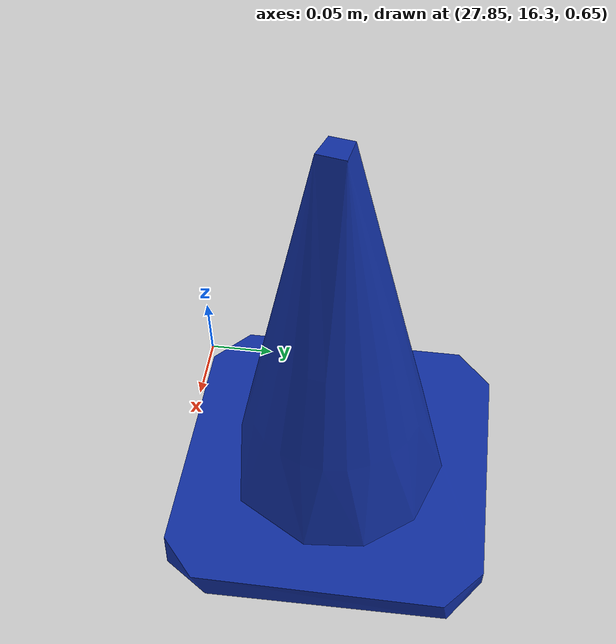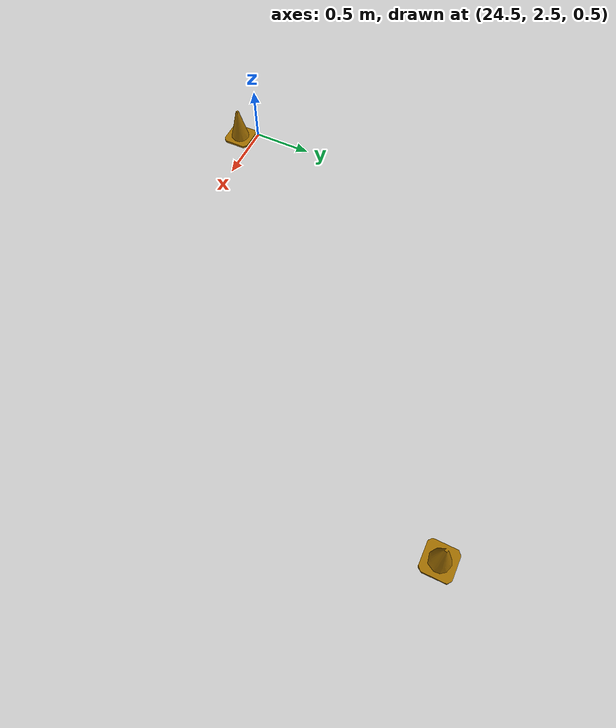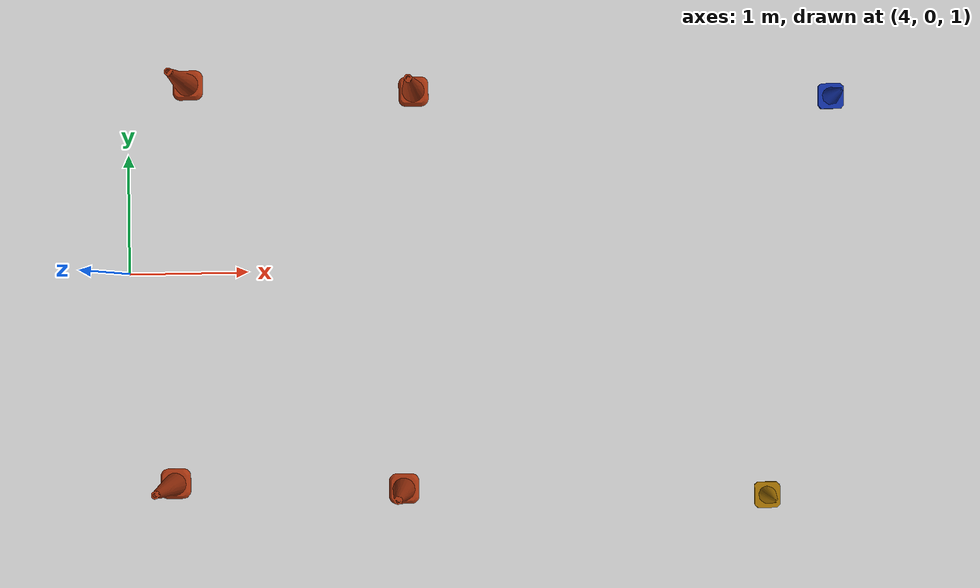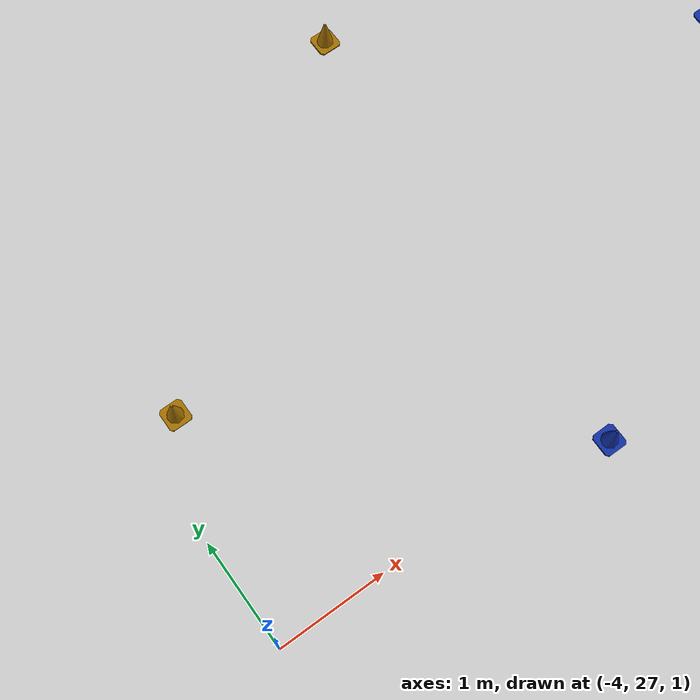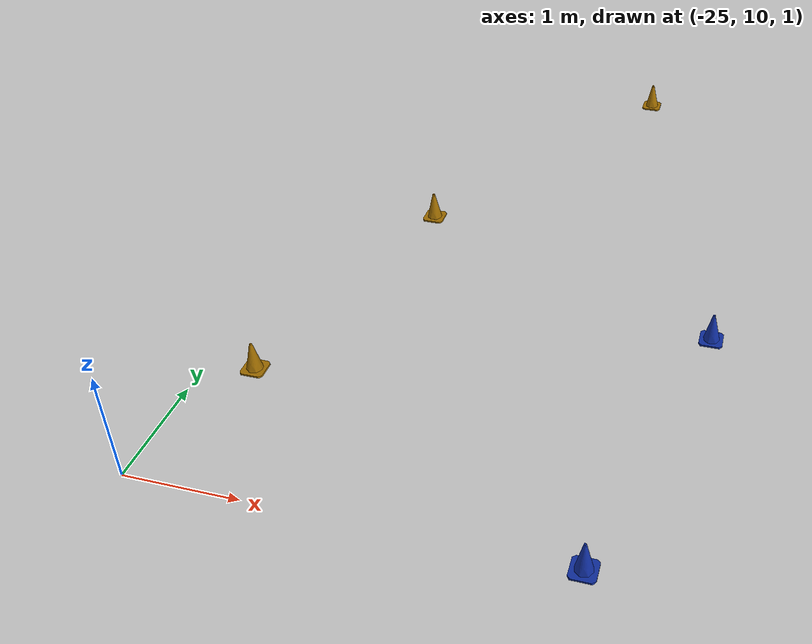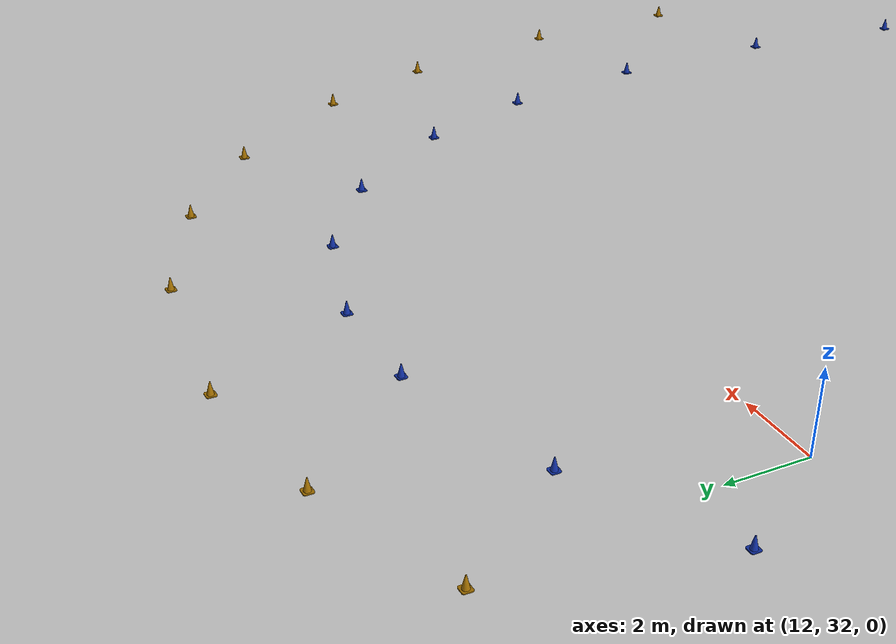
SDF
<sdf version='1.6'>
  <world name='small_track'>
    <gui fullscreen='0'>
      <camera name='user_camera'>
        <pose frame=''>-40 40 20 0 0.667643 -1</pose>
        <view_controller>orbit</view_controller>
        <projection_type>perspective</projection_type>
      </camera>
    </gui>

    <plugin
      filename="gz-sim-sensors-system"
      name="gz::sim::systems::Sensors">
      <render_engine>ogre2</render_engine>
    </plugin>

    <plugin
      filename="gz-sim-physics-system"
      name="gz::sim::systems::Physics">
    </plugin>

    <plugin
      filename="gz-sim-user-commands-system"
      name="gz::sim::systems::UserCommands">
    </plugin>

    <plugin
      filename="gz-sim-scene-broadcaster-system"
      name="gz::sim::systems::SceneBroadcaster">
    </plugin>

    <!-- WORLD SETTINGS -->
    <scene>
      <ambient>1.0 1.0 1.0 1.0</ambient>
      <shadows>false</shadows>
    </scene>

    <spherical_coordinates>
      <heading_deg>180</heading_deg>

      <!-- Appleton Tower coordinates -->
      <latitude_deg>-27.690733</latitude_deg>
      <longitude_deg>152.656715</longitude_deg>
    </spherical_coordinates>

    <light name='sun' type='directional'>
      <cast_shadows>1</cast_shadows>
      <pose frame=''>0 0 10 0 -0 0</pose>
      <diffuse>0.8 0.8 0.8 1</diffuse>
      <specular>0.1 0.1 0.1 1</specular>
      <attenuation>
        <range>1000</range>
        <constant>0.9</constant>
        <linear>0.01</linear>
        <quadratic>0.001</quadratic>
      </attenuation>
      <direction>-0.5 0.5 -1</direction>
    </light>

    <!-- MODELS -->
    <include>
      <uri>model://ground_plane</uri>
      <pose>0.0 0.0 0.0 0 0 0</pose>
    </include>

    <include>
      <uri>model://small_track</uri>
      <name>small_track</name>
      <pose>0 0 0.5 0 0 0</pose>
    </include>

  </world>
</sdf>

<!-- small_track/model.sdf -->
<sdf version='1.6'>
  <model name='small_track'>

    <include>
      <pose>10.07 1.47 0.15 0 0 0</pose>
      <uri>model://blue_cone</uri>
      <name>blue_cone_0</name>

    </include>

    <include>
      <pose>14.07 1.67 0.15 0 0 0</pose>
      <uri>model://blue_cone</uri>
      <name>blue_cone_1</name>

      //

    </include>

    <include>
      <pose>17.85 2.52 0.15 0 0 0</pose>
      <uri>model://blue_cone</uri>
      <name>blue_cone_2</name>

    </include>

    <include>
      <pose>20.75 3.87 0.15 0 0 0</pose>
      <uri>model://blue_cone</uri>
      <name>blue_cone_3</name>

    </include>

    <include>
      <pose>23.57 6.19 0.15 0 0 0</pose>
      <uri>model://blue_cone</uri>
      <name>blue_cone_4</name>

    </include>

    <include>
      <pose>25.68 9.18 0.15 0 0 0</pose>
      <uri>model://blue_cone</uri>
      <name>blue_cone_5</name>

    </include>

    <include>
      <pose>27.1 12.65 0.15 0 0 0</pose>
      <uri>model://blue_cone</uri>
      <name>blue_cone_6</name>

    </include>

    <include>
      <pose>27.96 16.42 0.15 0 0 0</pose>
      <uri>model://blue_cone</uri>
      <name>blue_cone_7</name>

    </include>

    <include>
      <pose>28.42 20.92 0.15 0 0 0</pose>
      <uri>model://blue_cone</uri>
      <name>blue_cone_8</name>

    </include>

    <include>
      <pose>28.38 25.49 0.15 0 0 0</pose>
      <uri>model://blue_cone</uri>
      <name>blue_cone_9</name>

    </include>

    <include>
      <pose>27.8 29.39 0.15 0 0 0</pose>
      <uri>model://blue_cone</uri>
      <name>blue_cone_10</name>

    </include>

    <include>
      <pose>26.75 32.48 0.15 0 0 0</pose>
      <uri>model://blue_cone</uri>
      <name>blue_cone_11</name>

    </include>

    <include>
      <pose>24.76 35.45 0.15 0 0 0</pose>
      <uri>model://blue_cone</uri>
      <name>blue_cone_12</name>

    </include>

    <include>
      <pose>22.43 37.23 0.15 0 0 0</pose>
      <uri>model://blue_cone</uri>
      <name>blue_cone_13</name>

    </include>

    <include>
      <pose>19.59 38.14 0.15 0 0 0</pose>
      <uri>model://blue_cone</uri>
      <name>blue_cone_14</name>

    </include>

    <include>
      <pose>16.93 38.16 0.15 0 0 0</pose>
      <uri>model://blue_cone</uri>
      <name>blue_cone_15</name>

    </include>

    <include>
      <pose>13.0 37.03 0.15 0 0 0</pose>
      <uri>model://blue_cone</uri>
      <name>blue_cone_16</name>

    </include>

    <include>
      <pose>9.69 35.16 0.15 0 0 0</pose>
      <uri>model://blue_cone</uri>
      <name>blue_cone_17</name>

    </include>

    <include>
      <pose>6.11 32.37 0.15 0 0 0</pose>
      <uri>model://blue_cone</uri>
      <name>blue_cone_18</name>

    </include>

    <include>
      <pose>2.73 29.44 0.15 0 0 0</pose>
      <uri>model://blue_cone</uri>
      <name>blue_cone_19</name>

    </include>

    <include>
      <pose>-0.75 26.8 0.15 0 0 0</pose>
      <uri>model://blue_cone</uri>
      <name>blue_cone_20</name>

    </include>

    <include>
      <pose>-5.17 24.36 0.15 0 0 0</pose>
      <uri>model://blue_cone</uri>
      <name>blue_cone_21</name>

    </include>

    <include>
      <pose>-9.41 22.44 0.15 0 0 0</pose>
      <uri>model://blue_cone</uri>
      <name>blue_cone_22</name>

    </include>

    <include>
      <pose>-13.13 20.61 0.15 0 0 0</pose>
      <uri>model://blue_cone</uri>
      <name>blue_cone_23</name>

    </include>

    <include>
      <pose>-16.57 18.35 0.15 0 0 0</pose>
      <uri>model://blue_cone</uri>
      <name>blue_cone_24</name>

    </include>

    <include>
      <pose>-19.31 15.66 0.15 0 0 0</pose>
      <uri>model://blue_cone</uri>
      <name>blue_cone_25</name>

    </include>

    <include>
      <pose>-20.77 13.21 0.15 0 0 0</pose>
      <uri>model://blue_cone</uri>
      <name>blue_cone_26</name>

    </include>

    <include>
      <pose>-21.39 10.3 0.15 0 0 0</pose>
      <uri>model://blue_cone</uri>
      <name>blue_cone_27</name>

    </include>

    <include>
      <pose>-20.97 8.04 0.15 0 0 0</pose>
      <uri>model://blue_cone</uri>
      <name>blue_cone_28</name>

    </include>

    <include>
      <pose>-19.4 5.65 0.15 0 0 0</pose>
      <uri>model://blue_cone</uri>
      <name>blue_cone_29</name>

    </include>

    <include>
      <pose>-16.77 3.75 0.15 0 0 0</pose>
      <uri>model://blue_cone</uri>
      <name>blue_cone_30</name>

    </include>

    <include>
      <pose>-13.36 2.5 0.15 0 0 0</pose>
      <uri>model://blue_cone</uri>
      <name>blue_cone_31</name>

    </include>

    <include>
      <pose>-9.54 1.89 0.15 0 0 0</pose>
      <uri>model://blue_cone</uri>
      <name>blue_cone_32</name>

    </include>

    <include>
      <pose>-5.01 1.72 0.15 0 0 0</pose>
      <uri>model://blue_cone</uri>
      <name>blue_cone_33</name>

    </include>

    <include>
      <pose>-0.0 1.75 0.15 0 0 0</pose>
      <uri>model://blue_cone</uri>
      <name>blue_cone_34</name>

    </include>

    <include>
      <pose>9.43 -2.02 0.15 0 0 0</pose>
      <uri>model://yellow_cone</uri>
      <name>yellow_cone_35</name>

    </include>

    <include>
      <pose>13.85 -1.87 0.15 0 0 0</pose>
      <uri>model://yellow_cone</uri>
      <name>yellow_cone_36</name>

    </include>

    <include>
      <pose>18.35 -1.0 0.15 0 0 0</pose>
      <uri>model://yellow_cone</uri>
      <name>yellow_cone_37</name>

    </include>

    <include>
      <pose>21.43 0.24 0.15 0 0 0</pose>
      <uri>model://yellow_cone</uri>
      <name>yellow_cone_38</name>

    </include>

    <include>
      <pose>24.72 2.45 0.15 0 0 0</pose>
      <uri>model://yellow_cone</uri>
      <name>yellow_cone_39</name>

    </include>

    <include>
      <pose>27.38 5.33 0.15 0 0 0</pose>
      <uri>model://yellow_cone</uri>
      <name>yellow_cone_40</name>

    </include>

    <include>
      <pose>29.59 9.26 0.15 0 0 0</pose>
      <uri>model://yellow_cone</uri>
      <name>yellow_cone_41</name>

    </include>

    <include>
      <pose>30.79 12.84 0.15 0 0 0</pose>
      <uri>model://yellow_cone</uri>
      <name>yellow_cone_42</name>

    </include>

    <include>
      <pose>31.67 17.69 0.15 0 0 0</pose>
      <uri>model://yellow_cone</uri>
      <name>yellow_cone_43</name>

    </include>

    <include>
      <pose>31.96 21.98 0.15 0 0 0</pose>
      <uri>model://yellow_cone</uri>
      <name>yellow_cone_44</name>

    </include>

    <include>
      <pose>31.82 26.37 0.15 0 0 0</pose>
      <uri>model://yellow_cone</uri>
      <name>yellow_cone_45</name>

    </include>

    <include>
      <pose>31.04 30.84 0.15 0 0 0</pose>
      <uri>model://yellow_cone</uri>
      <name>yellow_cone_46</name>

    </include>

    <include>
      <pose>29.92 33.96 0.15 0 0 0</pose>
      <uri>model://yellow_cone</uri>
      <name>yellow_cone_47</name>

    </include>

    <include>
      <pose>27.75 37.35 0.15 0 0 0</pose>
      <uri>model://yellow_cone</uri>
      <name>yellow_cone_48</name>

    </include>

    <include>
      <pose>25.23 39.63 0.15 0 0 0</pose>
      <uri>model://yellow_cone</uri>
      <name>yellow_cone_49</name>

    </include>

    <include>
      <pose>22.14 41.14 0.15 0 0 0</pose>
      <uri>model://yellow_cone</uri>
      <name>yellow_cone_50</name>

    </include>

    <include>
      <pose>17.95 41.73 0.15 0 0 0</pose>
      <uri>model://yellow_cone</uri>
      <name>yellow_cone_51</name>

    </include>

    <include>
      <pose>14.36 41.22 0.15 0 0 0</pose>
      <uri>model://yellow_cone</uri>
      <name>yellow_cone_52</name>

    </include>

    <include>
      <pose>10.9 39.92 0.15 0 0 0</pose>
      <uri>model://yellow_cone</uri>
      <name>yellow_cone_53</name>

    </include>

    <include>
      <pose>7.13 37.64 0.15 0 0 0</pose>
      <uri>model://yellow_cone</uri>
      <name>yellow_cone_54</name>

    </include>

    <include>
      <pose>3.32 34.59 0.15 0 0 0</pose>
      <uri>model://yellow_cone</uri>
      <name>yellow_cone_55</name>

    </include>

    <include>
      <pose>-0.43 31.37 0.15 0 0 0</pose>
      <uri>model://yellow_cone</uri>
      <name>yellow_cone_56</name>

    </include>

    <include>
      <pose>-3.61 29.13 0.15 0 0 0</pose>
      <uri>model://yellow_cone</uri>
      <name>yellow_cone_57</name>

    </include>

    <include>
      <pose>-7.22 27.26 0.15 0 0 0</pose>
      <uri>model://yellow_cone</uri>
      <name>yellow_cone_58</name>

    </include>

    <include>
      <pose>-12.16 25.03 0.15 0 0 0</pose>
      <uri>model://yellow_cone</uri>
      <name>yellow_cone_59</name>

    </include>

    <include>
      <pose>-15.49 23.29 0.15 0 0 0</pose>
      <uri>model://yellow_cone</uri>
      <name>yellow_cone_60</name>

    </include>

    <include>
      <pose>-19.35 20.61 0.15 0 0 0</pose>
      <uri>model://yellow_cone</uri>
      <name>yellow_cone_61</name>

    </include>

    <include>
      <pose>-22.07 17.82 0.15 0 0 0</pose>
      <uri>model://yellow_cone</uri>
      <name>yellow_cone_62</name>

    </include>

    <include>
      <pose>-24.0 14.56 0.15 0 0 0</pose>
      <uri>model://yellow_cone</uri>
      <name>yellow_cone_63</name>

    </include>

    <include>
      <pose>-24.79 11.73 0.15 0 0 0</pose>
      <uri>model://yellow_cone</uri>
      <name>yellow_cone_64</name>

    </include>

    <include>
      <pose>-24.65 8.15 0.15 0 0 0</pose>
      <uri>model://yellow_cone</uri>
      <name>yellow_cone_65</name>

    </include>

    <include>
      <pose>-23.26 4.88 0.15 0 0 0</pose>
      <uri>model://yellow_cone</uri>
      <name>yellow_cone_66</name>

    </include>

    <include>
      <pose>-20.83 2.23 0.15 0 0 0</pose>
      <uri>model://yellow_cone</uri>
      <name>yellow_cone_67</name>

    </include>

    <include>
      <pose>-17.71 0.31 0.15 0 0 0</pose>
      <uri>model://yellow_cone</uri>
      <name>yellow_cone_68</name>

    </include>

    <include>
      <pose>-14.2 -0.9 0.15 0 0 0</pose>
      <uri>model://yellow_cone</uri>
      <name>yellow_cone_69</name>

    </include>

    <include>
      <pose>-9.86 -1.6 0.15 0 0 0</pose>
      <uri>model://yellow_cone</uri>
      <name>yellow_cone_70</name>

    </include>

    <include>
      <pose>-5.01 -1.78 0.15 0 0 0</pose>
      <uri>model://yellow_cone</uri>
      <name>yellow_cone_71</name>

    </include>

    <include>
      <pose>0.0 -1.75 0.15 0 0 0</pose>
      <uri>model://yellow_cone</uri>
      <name>yellow_cone_72</name>

    </include>

    <include>
      <pose>6.39 1.58 0.15 0 0 0</pose>
      <uri>model://big_cone</uri>
      <name>big_cone_73</name>

    </include>

    <include>
      <pose>6.25 -1.91 0.15 0 0 0</pose>
      <uri>model://big_cone</uri>
      <name>big_cone_74</name>

    </include>

    <include>
      <pose>4.4 1.67 0.15 0 0 0</pose>
      <uri>model://big_cone</uri>
      <name>big_cone_75</name>

    </include>

    <include>
      <pose>4.25 -1.83 0.15 0 0 0</pose>
      <uri>model://big_cone</uri>
      <name>big_cone_76</name>

    </include>

    <static>0</static>
    <allow_auto_disable>1</allow_auto_disable>
  </model>
</sdf>

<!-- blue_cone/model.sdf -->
<sdf version='1.6'>
  <model name='blue_cone'>
    <link name='link'>
      <pose frame=''>0 0 0 0 0 0</pose>
      <inertial>
        <inertia>
          <ixx>0.0016</ixx>
          <ixy>0</ixy>
          <ixz>0</ixz>
          <iyy>0.0016</iyy>
          <iyz>0</iyz>
          <izz>0.0010</izz>
        </inertia>
        <mass>0.45</mass>
      </inertial>
      <visual name='visual'>
        <geometry>
          <mesh>
            <uri>model://cone_blue.dae</uri>
          </mesh>
        </geometry>
        <cast_shadows>1</cast_shadows>
      </visual>
      <collision name='collision'>
        <max_contacts>3</max_contacts>
        <geometry>
          <mesh>
            <uri>model://cone_blue.dae</uri>
          </mesh>
        </geometry>
      </collision>
    </link>
  </model>
</sdf>

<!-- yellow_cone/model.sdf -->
<sdf version='1.6'>
  <model name='yellow_cone'>
    <link name='link'>
      <pose frame=''>0 0 0 0 0 0</pose>
      <inertial>
        <inertia>
          <ixx>0.0016</ixx>
          <ixy>0</ixy>
          <ixz>0</ixz>
          <iyy>0.0016</iyy>
          <iyz>0</iyz>
          <izz>0.0010</izz>
        </inertia>
        <mass>0.45</mass>
      </inertial>
      <visual name='visual'>
        <geometry>
          <mesh>
            <uri>model://cone_yellow.dae</uri>
          </mesh>
        </geometry>
        <cast_shadows>1</cast_shadows>
      </visual>
      <collision name='collision'>
        <max_contacts>3</max_contacts>
        <geometry>
          <mesh>
            <uri>model://cone_yellow.dae</uri>
          </mesh>
        </geometry>
      </collision>
    </link>
  </model>
</sdf>

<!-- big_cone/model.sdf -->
<sdf version='1.6'>
  <model name='big_cone'>
    <link name='link'>
      <pose frame=''>0 0 0 0 0 0</pose>
      <inertial>
        <inertia>
          <ixx>0.0016</ixx>
          <ixy>0</ixy>
          <ixz>0</ixz>
          <iyy>0.0016</iyy>
          <iyz>0</iyz>
          <izz>0.0010</izz>
        </inertia>
        <mass>0.45</mass>
      </inertial>
      <visual name='visual'>
        <geometry>
          <mesh>
            <uri>model://cone_big.dae</uri>
          </mesh>
        </geometry>
        <cast_shadows>1</cast_shadows>
      </visual>
      <collision name='collision'>
        <max_contacts>3</max_contacts>
        <geometry>
          <mesh>
            <uri>model://cone_big.dae</uri>
          </mesh>
        </geometry>
      </collision>
    </link>
  </model>
</sdf>
